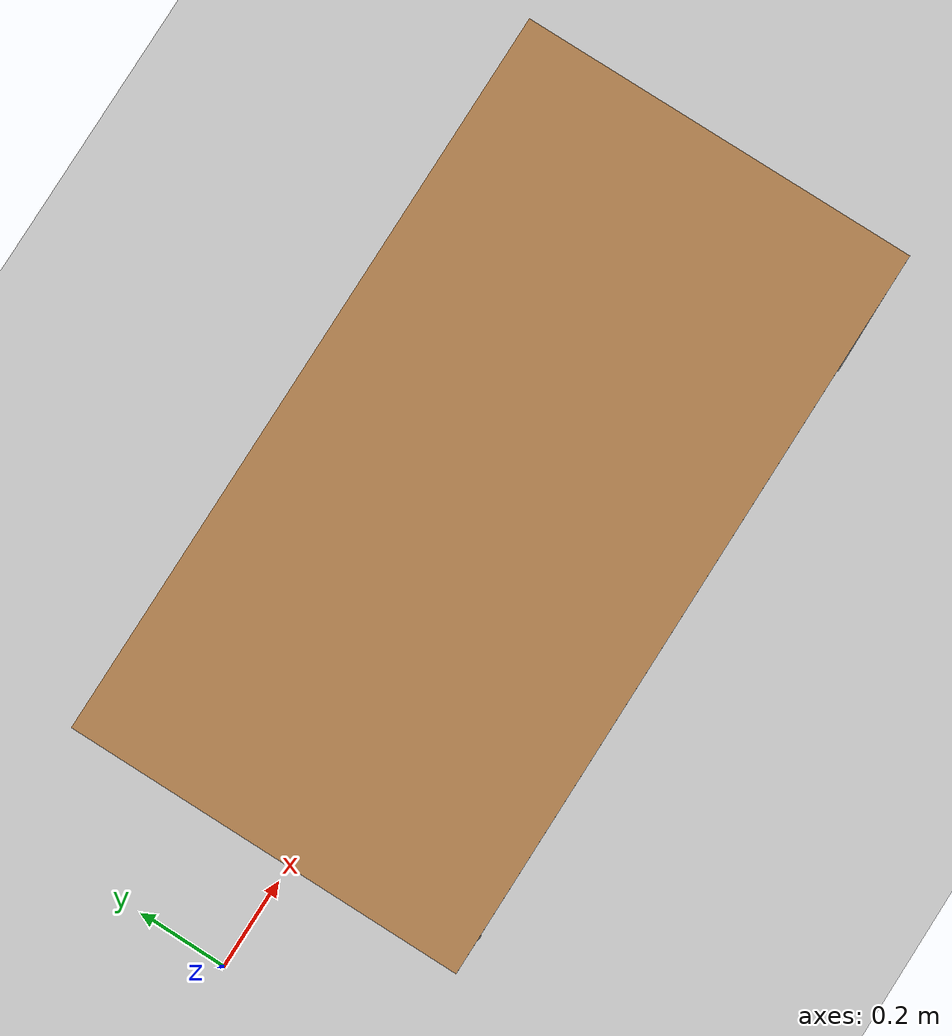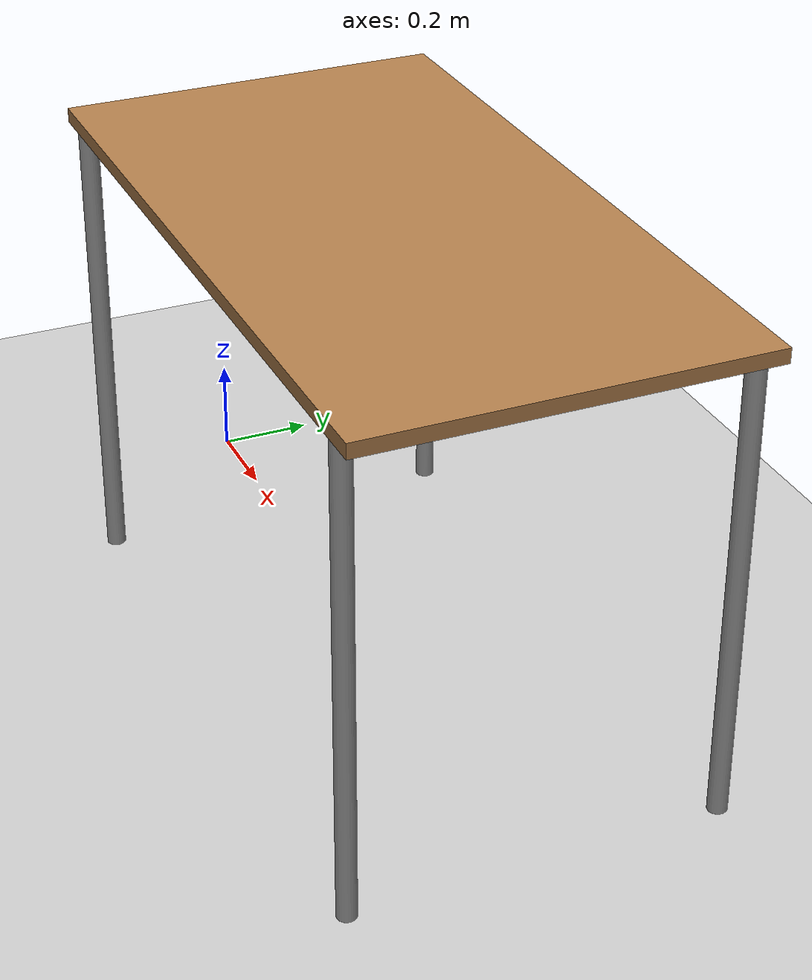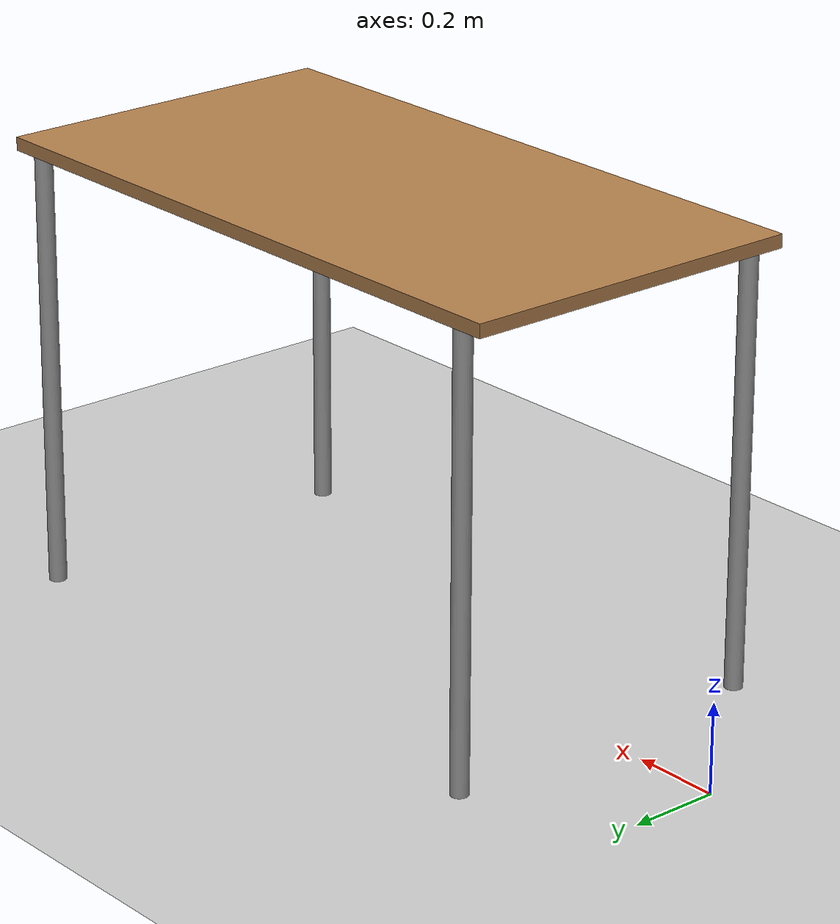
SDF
<sdf version="1.6">
 <world name="default">
  <physics type="ode">
   <max_step_size>0.001</max_step_size>
   <real_time_factor>1</real_time_factor>
   <real_time_update_rate>1000</real_time_update_rate>
  </physics>
  <scene>
   <ambient>0.4 0.4 0.4 1</ambient>
   <background>0.7 0.7 0.7 1</background>
   <shadows>false</shadows>
   <grid>false</grid>
   <origin_visual>false</origin_visual>
  </scene>
  <include><uri>model://ground_plane</uri></include>
  <include><uri>model://table</uri><name>table_1</name><pose>1 0 0 0 0 0</pose></include>
 </world>
</sdf>

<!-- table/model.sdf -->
<sdf version="1.5">
  <model name="table">
    <static>true</static>
    <link name="link">
      <collision name="surface">
        <pose>0 0 1.0 0 0 0</pose>
        <geometry>
          <box>
            <size>1.5 0.8 0.03</size>
          </box>
        </geometry>
        <surface>
          <friction>
            <ode>
              <mu>0.6</mu>
              <mu2>0.6</mu2>
            </ode>
          </friction>
        </surface>
      </collision>
      <visual name="visual1">
        <pose>0 0 1.0 0 0 0</pose>
        <geometry>
          <box>
            <size>1.5 0.8 0.03</size>
          </box>
        </geometry>
        <material>
          <script>
            <uri>model://media/materials/scripts/gazebo.material</uri>
            <name>Gazebo/Wood</name>
          </script>
        </material>
      </visual>
      <collision name="front_left_leg">
        <pose>0.68 0.38 0.5 0 0 0</pose>
        <geometry>
          <cylinder>
            <radius>0.02</radius>
            <length>1.0</length>
          </cylinder>
        </geometry>
      </collision>
      <visual name="front_left_leg">
        <pose>0.68 0.38 0.5 0 0 0</pose>
        <geometry>
          <cylinder>
            <radius>0.02</radius>
            <length>1.0</length>
          </cylinder>
        </geometry>
        <material>
          <script>
            <uri>model://media/materials/scripts/gazebo.material</uri>
            <name>Gazebo/Grey</name>
          </script>
        </material>
      </visual>
      <collision name="front_right_leg">
        <pose>0.68 -0.38 0.5 0 0 0</pose>
        <geometry>
          <cylinder>
            <radius>0.02</radius>
            <length>1.0</length>
          </cylinder>
        </geometry>
      </collision>
      <visual name="front_right_leg">
        <pose>0.68 -0.38 0.5 0 0 0</pose>
        <geometry>
          <cylinder>
            <radius>0.02</radius>
            <length>1.0</length>
          </cylinder>
        </geometry>
        <material>
          <script>
            <uri>model://media/materials/scripts/gazebo.material</uri>
            <name>Gazebo/Grey</name>
          </script>
        </material>
      </visual>
      <collision name="back_right_leg">
        <pose>-0.68 -0.38 0.5 0 0 0</pose>
        <geometry>
          <cylinder>
            <radius>0.02</radius>
            <length>1.0</length>
          </cylinder>
        </geometry>
      </collision>
      <visual name="back_right_leg">
        <pose>-0.68 -0.38 0.5 0 0 0</pose>
        <geometry>
          <cylinder>
            <radius>0.02</radius>
            <length>1.0</length>
          </cylinder>
        </geometry>
        <material>
          <script>
            <uri>model://media/materials/scripts/gazebo.material</uri>
            <name>Gazebo/Grey</name>
          </script>
        </material>
      </visual>
      <collision name="back_left_leg">
        <pose>-0.68 0.38 0.5 0 0 0</pose>
        <geometry>
          <cylinder>
            <radius>0.02</radius>
            <length>1.0</length>
          </cylinder>
        </geometry>
      </collision>
      <visual name="back_left_leg">
        <pose>-0.68 0.38 0.5 0 0 0</pose>
        <geometry>
          <cylinder>
            <radius>0.02</radius>
            <length>1.0</length>
          </cylinder>
        </geometry>
        <material>
          <script>
            <uri>model://media/materials/scripts/gazebo.material</uri>
            <name>Gazebo/Grey</name>
          </script>
        </material>
      </visual>
    </link>
  </model>
</sdf>
